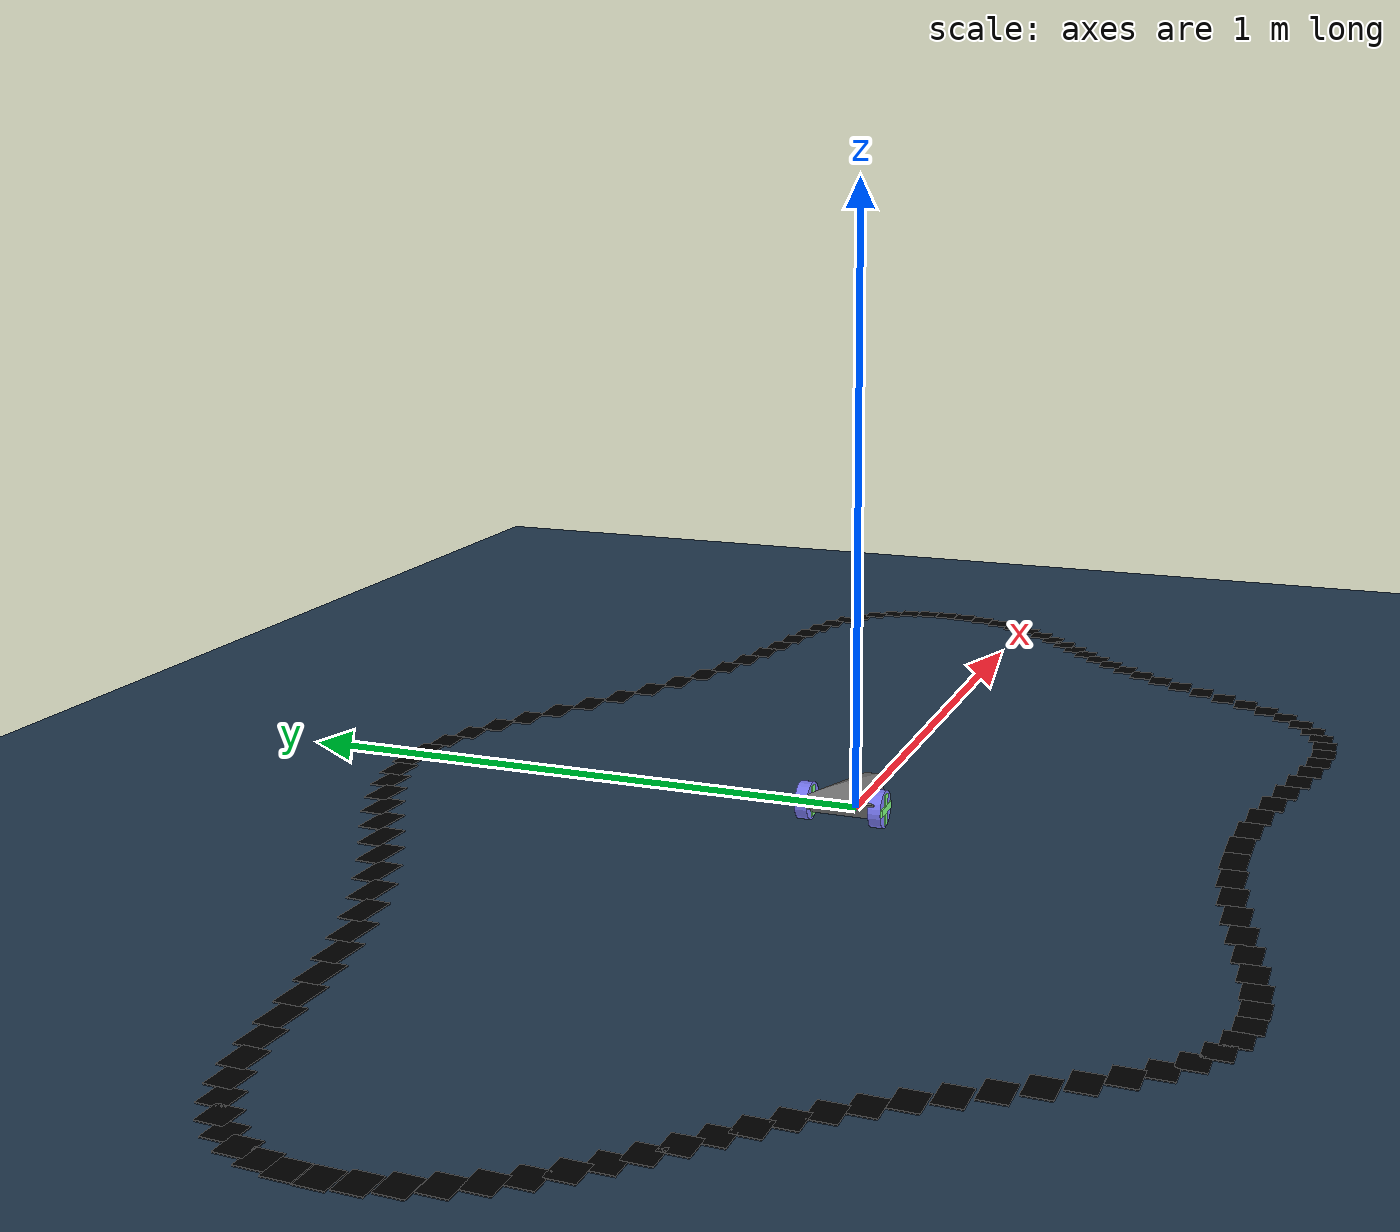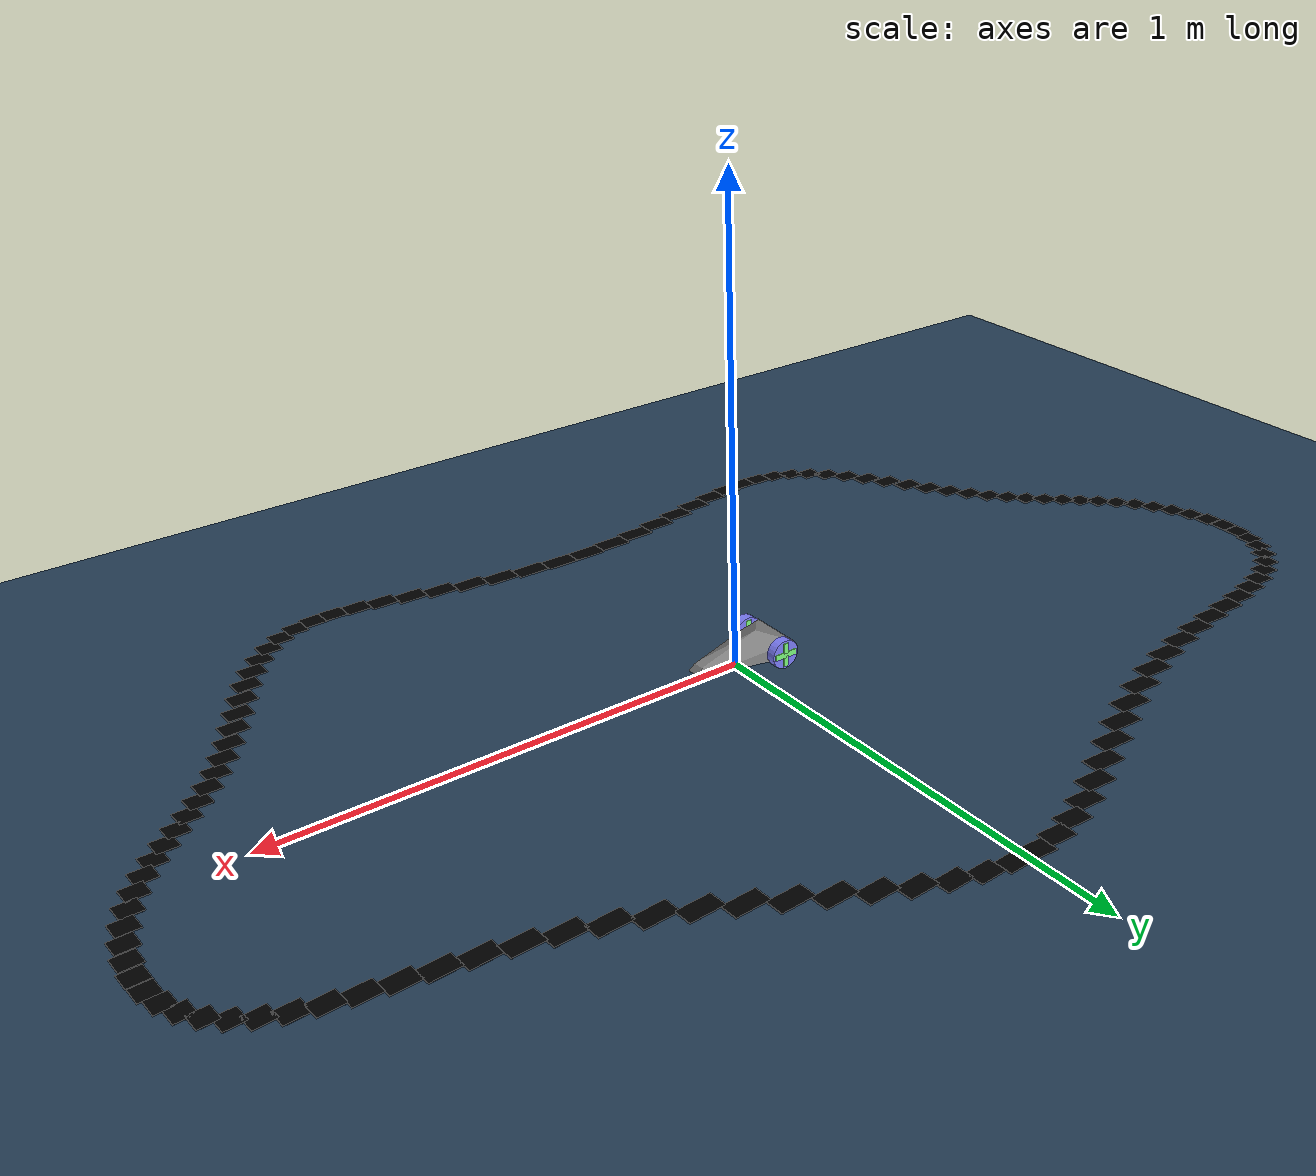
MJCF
<?xml version='1.0' encoding='utf-8'?>
<mujoco>
  <compiler autolimits="true" />

  <asset>
    <texture name="grid" type="2d" builtin="checker" width="512" height="512" rgb1=".1 .2 .3" rgb2=".2 .3 .4" />
    <material name="grid" texture="grid" texrepeat="1 1" texuniform="true" reflectance=".2" />
    <mesh name="chasis" scale=".01 .006 .0015" vertex=" 9   2   0               -10  10  10                9  -2   0                10  3  -10                10 -3  -10               -8   10 -10               -10 -10  10               -8  -10 -10               -5   0   20" />
  <material name="track" rgba="0 0 0 1" /></asset>

  <default>
    <joint damping=".03" actuatorfrcrange="-0.5 0.5" />
    <default class="wheel">
      <geom type="cylinder" size=".03 .01" rgba=".5 .5 1 1" />
    </default>
    <default class="decor">
      <site type="box" rgba=".5 1 .5 1" />
    </default>
  </default>

  <worldbody>
    <geom type="plane" size="3 3 .01" material="grid" />
    <body name="car" pos="0 0 .03">
      <freejoint />
      <light name="top light" pos="0 0 2" mode="trackcom" diffuse=".4 .4 .4" />
      <geom name="chasis" type="mesh" mesh="chasis" />
      <geom name="front wheel" pos=".08 0 -.015" type="sphere" size=".015" condim="1" priority="1" />
      <light name="front light" pos=".1 0 .02" dir="2 0 -1" diffuse="1 1 1" />
      <body name="left wheel" pos="-.07 .06 0" zaxis="0 1 0">
        <joint name="left" />
        <geom class="wheel" />
        <site class="decor" size=".006 .025 .012" />
        <site class="decor" size=".025 .006 .012" />
      </body>
      <body name="right wheel" pos="-.07 -.06 0" zaxis="0 1 0">
        <joint name="right" />
        <geom class="wheel" />
        <site class="decor" size=".006 .025 .012" />
        <site class="decor" size=".025 .006 .012" />
      </body>
    </body>
  <geom name="track-seg-0" type="box" pos="1.2109 0.0190 0.001" size="0.0219 0.0200 0.001" material="track" euler="0 0 1.0501" contype="0" conaffinity="0" /><geom name="track-seg-1" type="box" pos="1.2307 0.0582 0.001" size="0.0221 0.0200 0.001" material="track" euler="0 0 1.1572" contype="0" conaffinity="0" /><geom name="track-seg-2" type="box" pos="1.2460 0.0995 0.001" size="0.0221 0.0200 0.001" material="track" euler="0 0 1.2726" contype="0" conaffinity="0" /><geom name="track-seg-3" type="box" pos="1.2563 0.1421 0.001" size="0.0218 0.0200 0.001" material="track" euler="0 0 1.3973" contype="0" conaffinity="0" /><geom name="track-seg-4" type="box" pos="1.2608 0.1849 0.001" size="0.0213 0.0200 0.001" material="track" euler="0 0 1.5346" contype="0" conaffinity="0" /><geom name="track-seg-5" type="box" pos="1.2591 0.2267 0.001" size="0.0207 0.0200 0.001" material="track" euler="0 0 1.6892" contype="0" conaffinity="0" /><geom name="track-seg-6" type="box" pos="1.2509 0.2663 0.001" size="0.0200 0.0200 0.001" material="track" euler="0 0 1.8654" contype="0" conaffinity="0" /><geom name="track-seg-7" type="box" pos="1.2358 0.3027 0.001" size="0.0196 0.0200 0.001" material="track" euler="0 0 2.0632" contype="0" conaffinity="0" /><geom name="track-seg-8" type="box" pos="1.2139 0.3349 0.001" size="0.0196 0.0200 0.001" material="track" euler="0 0 2.2734" contype="0" conaffinity="0" /><geom name="track-seg-9" type="box" pos="1.1852 0.3624 0.001" size="0.0204 0.0200 0.001" material="track" euler="0 0 2.4776" contype="0" conaffinity="0" /><geom name="track-seg-10" type="box" pos="1.1499 0.3852 0.001" size="0.0218 0.0200 0.001" material="track" euler="0 0 2.6552" contype="0" conaffinity="0" /><geom name="track-seg-11" type="box" pos="1.1084 0.4034 0.001" size="0.0236 0.0200 0.001" material="track" euler="0 0 2.7938" contype="0" conaffinity="0" /><geom name="track-seg-12" type="box" pos="1.0613 0.4178 0.001" size="0.0257 0.0200 0.001" material="track" euler="0 0 2.8902" contype="0" conaffinity="0" /><geom name="track-seg-13" type="box" pos="1.0092 0.4296 0.001" size="0.0278 0.0200 0.001" material="track" euler="0 0 2.9477" contype="0" conaffinity="0" /><geom name="track-seg-14" type="box" pos="0.9527 0.4400 0.001" size="0.0296 0.0200 0.001" material="track" euler="0 0 2.9714" contype="0" conaffinity="0" /><geom name="track-seg-15" type="box" pos="0.8927 0.4504 0.001" size="0.0313 0.0200 0.001" material="track" euler="0 0 2.9669" contype="0" conaffinity="0" /><geom name="track-seg-16" type="box" pos="0.8300 0.4624 0.001" size="0.0326 0.0200 0.001" material="track" euler="0 0 2.9395" contype="0" conaffinity="0" /><geom name="track-seg-17" type="box" pos="0.7653 0.4772 0.001" size="0.0337 0.0200 0.001" material="track" euler="0 0 2.8950" contype="0" conaffinity="0" /><geom name="track-seg-18" type="box" pos="0.6995 0.4957 0.001" size="0.0347 0.0200 0.001" material="track" euler="0 0 2.8394" contype="0" conaffinity="0" /><geom name="track-seg-19" type="box" pos="0.6332 0.5186 0.001" size="0.0355 0.0200 0.001" material="track" euler="0 0 2.7792" contype="0" conaffinity="0" /><geom name="track-seg-20" type="box" pos="0.5671 0.5460 0.001" size="0.0361 0.0200 0.001" material="track" euler="0 0 2.7207" contype="0" conaffinity="0" /><geom name="track-seg-21" type="box" pos="0.5017 0.5773 0.001" size="0.0364 0.0200 0.001" material="track" euler="0 0 2.6700" contype="0" conaffinity="0" /><geom name="track-seg-22" type="box" pos="0.4374 0.6116 0.001" size="0.0364 0.0200 0.001" material="track" euler="0 0 2.6320" contype="0" conaffinity="0" /><geom name="track-seg-23" type="box" pos="0.3746 0.6475 0.001" size="0.0360 0.0200 0.001" material="track" euler="0 0 2.6112" contype="0" conaffinity="0" /><geom name="track-seg-24" type="box" pos="0.3134 0.6834 0.001" size="0.0350 0.0200 0.001" material="track" euler="0 0 2.6117" contype="0" conaffinity="0" /><geom name="track-seg-25" type="box" pos="0.2537 0.7174 0.001" size="0.0336 0.0200 0.001" material="track" euler="0 0 2.6376" contype="0" conaffinity="0" /><geom name="track-seg-26" type="box" pos="0.1955 0.7474 0.001" size="0.0319 0.0200 0.001" material="track" euler="0 0 2.6936" contype="0" conaffinity="0" /><geom name="track-seg-27" type="box" pos="0.1387 0.7718 0.001" size="0.0301 0.0200 0.001" material="track" euler="0 0 2.7834" contype="0" conaffinity="0" /><geom name="track-seg-28" type="box" pos="0.0828 0.7889 0.001" size="0.0285 0.0200 0.001" material="track" euler="0 0 2.9079" contype="0" conaffinity="0" /><geom name="track-seg-29" type="box" pos="0.0275 0.7978 0.001" size="0.0276 0.0200 0.001" material="track" euler="0 0 3.0600" contype="0" conaffinity="0" /><geom name="track-seg-30" type="box" pos="-0.0275 0.7978 0.001" size="0.0276 0.0200 0.001" material="track" euler="0 0 -3.0600" contype="0" conaffinity="0" /><geom name="track-seg-31" type="box" pos="-0.0828 0.7889 0.001" size="0.0285 0.0200 0.001" material="track" euler="0 0 -2.9079" contype="0" conaffinity="0" /><geom name="track-seg-32" type="box" pos="-0.1387 0.7718 0.001" size="0.0301 0.0200 0.001" material="track" euler="0 0 -2.7834" contype="0" conaffinity="0" /><geom name="track-seg-33" type="box" pos="-0.1955 0.7474 0.001" size="0.0319 0.0200 0.001" material="track" euler="0 0 -2.6936" contype="0" conaffinity="0" /><geom name="track-seg-34" type="box" pos="-0.2537 0.7174 0.001" size="0.0336 0.0200 0.001" material="track" euler="0 0 -2.6376" contype="0" conaffinity="0" /><geom name="track-seg-35" type="box" pos="-0.3134 0.6834 0.001" size="0.0350 0.0200 0.001" material="track" euler="0 0 -2.6117" contype="0" conaffinity="0" /><geom name="track-seg-36" type="box" pos="-0.3746 0.6475 0.001" size="0.0360 0.0200 0.001" material="track" euler="0 0 -2.6112" contype="0" conaffinity="0" /><geom name="track-seg-37" type="box" pos="-0.4374 0.6116 0.001" size="0.0364 0.0200 0.001" material="track" euler="0 0 -2.6320" contype="0" conaffinity="0" /><geom name="track-seg-38" type="box" pos="-0.5017 0.5773 0.001" size="0.0364 0.0200 0.001" material="track" euler="0 0 -2.6700" contype="0" conaffinity="0" /><geom name="track-seg-39" type="box" pos="-0.5671 0.5460 0.001" size="0.0361 0.0200 0.001" material="track" euler="0 0 -2.7207" contype="0" conaffinity="0" /><geom name="track-seg-40" type="box" pos="-0.6332 0.5186 0.001" size="0.0355 0.0200 0.001" material="track" euler="0 0 -2.7792" contype="0" conaffinity="0" /><geom name="track-seg-41" type="box" pos="-0.6995 0.4957 0.001" size="0.0347 0.0200 0.001" material="track" euler="0 0 -2.8394" contype="0" conaffinity="0" /><geom name="track-seg-42" type="box" pos="-0.7653 0.4772 0.001" size="0.0337 0.0200 0.001" material="track" euler="0 0 -2.8950" contype="0" conaffinity="0" /><geom name="track-seg-43" type="box" pos="-0.8300 0.4624 0.001" size="0.0326 0.0200 0.001" material="track" euler="0 0 -2.9395" contype="0" conaffinity="0" /><geom name="track-seg-44" type="box" pos="-0.8927 0.4504 0.001" size="0.0313 0.0200 0.001" material="track" euler="0 0 -2.9669" contype="0" conaffinity="0" /><geom name="track-seg-45" type="box" pos="-0.9527 0.4400 0.001" size="0.0296 0.0200 0.001" material="track" euler="0 0 -2.9714" contype="0" conaffinity="0" /><geom name="track-seg-46" type="box" pos="-1.0092 0.4296 0.001" size="0.0278 0.0200 0.001" material="track" euler="0 0 -2.9477" contype="0" conaffinity="0" /><geom name="track-seg-47" type="box" pos="-1.0613 0.4178 0.001" size="0.0257 0.0200 0.001" material="track" euler="0 0 -2.8902" contype="0" conaffinity="0" /><geom name="track-seg-48" type="box" pos="-1.1084 0.4034 0.001" size="0.0236 0.0200 0.001" material="track" euler="0 0 -2.7938" contype="0" conaffinity="0" /><geom name="track-seg-49" type="box" pos="-1.1499 0.3852 0.001" size="0.0218 0.0200 0.001" material="track" euler="0 0 -2.6552" contype="0" conaffinity="0" /><geom name="track-seg-50" type="box" pos="-1.1852 0.3624 0.001" size="0.0204 0.0200 0.001" material="track" euler="0 0 -2.4776" contype="0" conaffinity="0" /><geom name="track-seg-51" type="box" pos="-1.2139 0.3349 0.001" size="0.0196 0.0200 0.001" material="track" euler="0 0 -2.2734" contype="0" conaffinity="0" /><geom name="track-seg-52" type="box" pos="-1.2358 0.3027 0.001" size="0.0196 0.0200 0.001" material="track" euler="0 0 -2.0632" contype="0" conaffinity="0" /><geom name="track-seg-53" type="box" pos="-1.2509 0.2663 0.001" size="0.0200 0.0200 0.001" material="track" euler="0 0 -1.8654" contype="0" conaffinity="0" /><geom name="track-seg-54" type="box" pos="-1.2591 0.2267 0.001" size="0.0207 0.0200 0.001" material="track" euler="0 0 -1.6892" contype="0" conaffinity="0" /><geom name="track-seg-55" type="box" pos="-1.2608 0.1849 0.001" size="0.0213 0.0200 0.001" material="track" euler="0 0 -1.5346" contype="0" conaffinity="0" /><geom name="track-seg-56" type="box" pos="-1.2563 0.1421 0.001" size="0.0218 0.0200 0.001" material="track" euler="0 0 -1.3973" contype="0" conaffinity="0" /><geom name="track-seg-57" type="box" pos="-1.2460 0.0995 0.001" size="0.0221 0.0200 0.001" material="track" euler="0 0 -1.2726" contype="0" conaffinity="0" /><geom name="track-seg-58" type="box" pos="-1.2307 0.0582 0.001" size="0.0221 0.0200 0.001" material="track" euler="0 0 -1.1572" contype="0" conaffinity="0" /><geom name="track-seg-59" type="box" pos="-1.2109 0.0190 0.001" size="0.0219 0.0200 0.001" material="track" euler="0 0 -1.0501" contype="0" conaffinity="0" /><geom name="track-seg-60" type="box" pos="-1.1875 -0.0176 0.001" size="0.0216 0.0200 0.001" material="track" euler="0 0 -0.9529" contype="0" conaffinity="0" /><geom name="track-seg-61" type="box" pos="-1.1611 -0.0516 0.001" size="0.0214 0.0200 0.001" material="track" euler="0 0 -0.8693" contype="0" conaffinity="0" /><geom name="track-seg-62" type="box" pos="-1.1326 -0.0832 0.001" size="0.0212 0.0200 0.001" material="track" euler="0 0 -0.8044" contype="0" conaffinity="0" /><geom name="track-seg-63" type="box" pos="-1.1028 -0.1130 0.001" size="0.0210 0.0200 0.001" material="track" euler="0 0 -0.7629" contype="0" conaffinity="0" /><geom name="track-seg-64" type="box" pos="-1.0721 -0.1419 0.001" size="0.0211 0.0200 0.001" material="track" euler="0 0 -0.7478" contype="0" conaffinity="0" /><geom name="track-seg-65" type="box" pos="-1.0413 -0.1708 0.001" size="0.0212 0.0200 0.001" material="track" euler="0 0 -0.7593" contype="0" conaffinity="0" /><geom name="track-seg-66" type="box" pos="-1.0107 -0.2008 0.001" size="0.0216 0.0200 0.001" material="track" euler="0 0 -0.7936" contype="0" conaffinity="0" /><geom name="track-seg-67" type="box" pos="-0.9807 -0.2329 0.001" size="0.0223 0.0200 0.001" material="track" euler="0 0 -0.8435" contype="0" conaffinity="0" /><geom name="track-seg-68" type="box" pos="-0.9516 -0.2676 0.001" size="0.0231 0.0200 0.001" material="track" euler="0 0 -0.9000" contype="0" conaffinity="0" /><geom name="track-seg-69" type="box" pos="-0.9233 -0.3053 0.001" size="0.0241 0.0200 0.001" material="track" euler="0 0 -0.9540" contype="0" conaffinity="0" /><geom name="track-seg-70" type="box" pos="-0.8957 -0.3461 0.001" size="0.0251 0.0200 0.001" material="track" euler="0 0 -0.9982" contype="0" conaffinity="0" /><geom name="track-seg-71" type="box" pos="-0.8688 -0.3893 0.001" size="0.0259 0.0200 0.001" material="track" euler="0 0 -1.0276" contype="0" conaffinity="0" /><geom name="track-seg-72" type="box" pos="-0.8421 -0.4341 0.001" size="0.0263 0.0200 0.001" material="track" euler="0 0 -1.0388" contype="0" conaffinity="0" /><geom name="track-seg-73" type="box" pos="-0.8152 -0.4793 0.001" size="0.0263 0.0200 0.001" material="track" euler="0 0 -1.0288" contype="0" conaffinity="0" /><geom name="track-seg-74" type="box" pos="-0.7876 -0.5234 0.001" size="0.0257 0.0200 0.001" material="track" euler="0 0 -0.9939" contype="0" conaffinity="0" /><geom name="track-seg-75" type="box" pos="-0.7587 -0.5648 0.001" size="0.0247 0.0200 0.001" material="track" euler="0 0 -0.9293" contype="0" conaffinity="0" /><geom name="track-seg-76" type="box" pos="-0.7281 -0.6018 0.001" size="0.0234 0.0200 0.001" material="track" euler="0 0 -0.8289" contype="0" conaffinity="0" /><geom name="track-seg-77" type="box" pos="-0.6952 -0.6331 0.001" size="0.0222 0.0200 0.001" material="track" euler="0 0 -0.6881" contype="0" conaffinity="0" /><geom name="track-seg-78" type="box" pos="-0.6594 -0.6576 0.001" size="0.0214 0.0200 0.001" material="track" euler="0 0 -0.5099" contype="0" conaffinity="0" /><geom name="track-seg-79" type="box" pos="-0.6204 -0.6746 0.001" size="0.0214 0.0200 0.001" material="track" euler="0 0 -0.3116" contype="0" conaffinity="0" /><geom name="track-seg-80" type="box" pos="-0.5777 -0.6840 0.001" size="0.0224 0.0200 0.001" material="track" euler="0 0 -0.1226" contype="0" conaffinity="0" /><geom name="track-seg-81" type="box" pos="-0.5312 -0.6859 0.001" size="0.0243 0.0200 0.001" material="track" euler="0 0 0.0319" contype="0" conaffinity="0" /><geom name="track-seg-82" type="box" pos="-0.4807 -0.6814 0.001" size="0.0265 0.0200 0.001" material="track" euler="0 0 0.1417" contype="0" conaffinity="0" /><geom name="track-seg-83" type="box" pos="-0.4263 -0.6717 0.001" size="0.0288 0.0200 0.001" material="track" euler="0 0 0.2085" contype="0" conaffinity="0" /><geom name="track-seg-84" type="box" pos="-0.3681 -0.6584 0.001" size="0.0309 0.0200 0.001" material="track" euler="0 0 0.2384" contype="0" conaffinity="0" /><geom name="track-seg-85" type="box" pos="-0.3064 -0.6435 0.001" size="0.0326 0.0200 0.001" material="track" euler="0 0 0.2379" contype="0" conaffinity="0" /><geom name="track-seg-86" type="box" pos="-0.2417 -0.6287 0.001" size="0.0338 0.0200 0.001" material="track" euler="0 0 0.2124" contype="0" conaffinity="0" /><geom name="track-seg-87" type="box" pos="-0.1745 -0.6158 0.001" size="0.0346 0.0200 0.001" material="track" euler="0 0 0.1669" contype="0" conaffinity="0" /><geom name="track-seg-88" type="box" pos="-0.1055 -0.6063 0.001" size="0.0351 0.0200 0.001" material="track" euler="0 0 0.1064" contype="0" conaffinity="0" /><geom name="track-seg-89" type="box" pos="-0.0353 -0.6013 0.001" size="0.0353 0.0200 0.001" material="track" euler="0 0 0.0366" contype="0" conaffinity="0" /><geom name="track-seg-90" type="box" pos="0.0353 -0.6013 0.001" size="0.0353 0.0200 0.001" material="track" euler="0 0 -0.0366" contype="0" conaffinity="0" /><geom name="track-seg-91" type="box" pos="0.1055 -0.6063 0.001" size="0.0351 0.0200 0.001" material="track" euler="0 0 -0.1064" contype="0" conaffinity="0" /><geom name="track-seg-92" type="box" pos="0.1745 -0.6158 0.001" size="0.0346 0.0200 0.001" material="track" euler="0 0 -0.1669" contype="0" conaffinity="0" /><geom name="track-seg-93" type="box" pos="0.2417 -0.6287 0.001" size="0.0338 0.0200 0.001" material="track" euler="0 0 -0.2124" contype="0" conaffinity="0" /><geom name="track-seg-94" type="box" pos="0.3064 -0.6435 0.001" size="0.0326 0.0200 0.001" material="track" euler="0 0 -0.2379" contype="0" conaffinity="0" /><geom name="track-seg-95" type="box" pos="0.3681 -0.6584 0.001" size="0.0309 0.0200 0.001" material="track" euler="0 0 -0.2384" contype="0" conaffinity="0" /><geom name="track-seg-96" type="box" pos="0.4263 -0.6717 0.001" size="0.0288 0.0200 0.001" material="track" euler="0 0 -0.2085" contype="0" conaffinity="0" /><geom name="track-seg-97" type="box" pos="0.4807 -0.6814 0.001" size="0.0265 0.0200 0.001" material="track" euler="0 0 -0.1417" contype="0" conaffinity="0" /><geom name="track-seg-98" type="box" pos="0.5312 -0.6859 0.001" size="0.0243 0.0200 0.001" material="track" euler="0 0 -0.0319" contype="0" conaffinity="0" /><geom name="track-seg-99" type="box" pos="0.5777 -0.6840 0.001" size="0.0224 0.0200 0.001" material="track" euler="0 0 0.1226" contype="0" conaffinity="0" /><geom name="track-seg-100" type="box" pos="0.6204 -0.6746 0.001" size="0.0214 0.0200 0.001" material="track" euler="0 0 0.3116" contype="0" conaffinity="0" /><geom name="track-seg-101" type="box" pos="0.6594 -0.6576 0.001" size="0.0214 0.0200 0.001" material="track" euler="0 0 0.5099" contype="0" conaffinity="0" /><geom name="track-seg-102" type="box" pos="0.6952 -0.6331 0.001" size="0.0222 0.0200 0.001" material="track" euler="0 0 0.6881" contype="0" conaffinity="0" /><geom name="track-seg-103" type="box" pos="0.7281 -0.6018 0.001" size="0.0234 0.0200 0.001" material="track" euler="0 0 0.8289" contype="0" conaffinity="0" /><geom name="track-seg-104" type="box" pos="0.7587 -0.5648 0.001" size="0.0247 0.0200 0.001" material="track" euler="0 0 0.9293" contype="0" conaffinity="0" /><geom name="track-seg-105" type="box" pos="0.7876 -0.5234 0.001" size="0.0257 0.0200 0.001" material="track" euler="0 0 0.9939" contype="0" conaffinity="0" /><geom name="track-seg-106" type="box" pos="0.8152 -0.4793 0.001" size="0.0263 0.0200 0.001" material="track" euler="0 0 1.0288" contype="0" conaffinity="0" /><geom name="track-seg-107" type="box" pos="0.8421 -0.4341 0.001" size="0.0263 0.0200 0.001" material="track" euler="0 0 1.0388" contype="0" conaffinity="0" /><geom name="track-seg-108" type="box" pos="0.8688 -0.3893 0.001" size="0.0259 0.0200 0.001" material="track" euler="0 0 1.0276" contype="0" conaffinity="0" /><geom name="track-seg-109" type="box" pos="0.8957 -0.3461 0.001" size="0.0251 0.0200 0.001" material="track" euler="0 0 0.9982" contype="0" conaffinity="0" /><geom name="track-seg-110" type="box" pos="0.9233 -0.3053 0.001" size="0.0241 0.0200 0.001" material="track" euler="0 0 0.9540" contype="0" conaffinity="0" /><geom name="track-seg-111" type="box" pos="0.9516 -0.2676 0.001" size="0.0231 0.0200 0.001" material="track" euler="0 0 0.9000" contype="0" conaffinity="0" /><geom name="track-seg-112" type="box" pos="0.9807 -0.2329 0.001" size="0.0223 0.0200 0.001" material="track" euler="0 0 0.8435" contype="0" conaffinity="0" /><geom name="track-seg-113" type="box" pos="1.0107 -0.2008 0.001" size="0.0216 0.0200 0.001" material="track" euler="0 0 0.7936" contype="0" conaffinity="0" /><geom name="track-seg-114" type="box" pos="1.0413 -0.1708 0.001" size="0.0212 0.0200 0.001" material="track" euler="0 0 0.7593" contype="0" conaffinity="0" /><geom name="track-seg-115" type="box" pos="1.0721 -0.1419 0.001" size="0.0211 0.0200 0.001" material="track" euler="0 0 0.7478" contype="0" conaffinity="0" /><geom name="track-seg-116" type="box" pos="1.1028 -0.1130 0.001" size="0.0210 0.0200 0.001" material="track" euler="0 0 0.7629" contype="0" conaffinity="0" /><geom name="track-seg-117" type="box" pos="1.1326 -0.0832 0.001" size="0.0212 0.0200 0.001" material="track" euler="0 0 0.8044" contype="0" conaffinity="0" /><geom name="track-seg-118" type="box" pos="1.1611 -0.0516 0.001" size="0.0214 0.0200 0.001" material="track" euler="0 0 0.8693" contype="0" conaffinity="0" /><geom name="track-seg-119" type="box" pos="1.1875 -0.0176 0.001" size="0.0216 0.0200 0.001" material="track" euler="0 0 0.9529" contype="0" conaffinity="0" /></worldbody>

  <tendon>
    <fixed name="forward">
      <joint joint="left" coef=".5" />
      <joint joint="right" coef=".5" />
    </fixed>
    <fixed name="turn">
      <joint joint="left" coef="-.5" />
      <joint joint="right" coef=".5" />
    </fixed>
  </tendon>

  <actuator>
    <motor name="forward" tendon="forward" ctrlrange="-1 1" />
    <motor name="turn" tendon="turn" ctrlrange="-1 1" />
  </actuator>

  <sensor>
    <jointactuatorfrc name="right" joint="right" />
    <jointactuatorfrc name="left" joint="left" />
  </sensor>
</mujoco>
